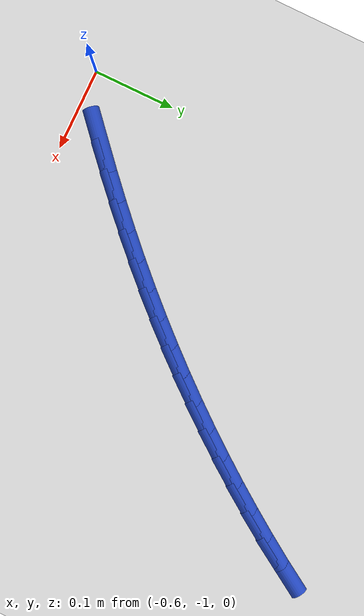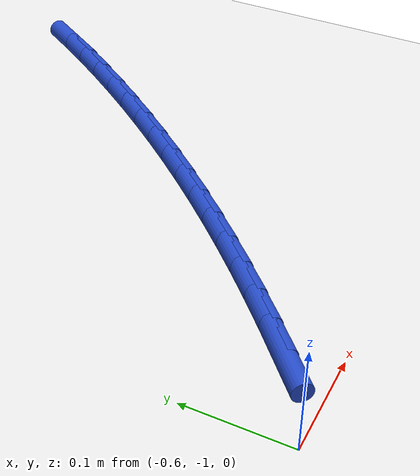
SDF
<sdf version="1.6">
 <world name="default">
  <model name="ground_plane">
   <static>1</static>
   <link name="link">
    <collision name="collision">
     <geometry><plane><normal>0 0 1</normal><size>100 100</size></plane></geometry>
     <surface><friction><ode><mu>100</mu><mu2>50</mu2></ode></friction></surface>
    </collision>
    <visual name="visual">
     <cast_shadows>0</cast_shadows>
     <geometry><plane><normal>0 0 1</normal><size>100 100</size></plane></geometry>
     <material>
      <script><uri>file://media/materials/scripts/gazebo.material</uri><name>Gazebo/WhiteGlow</name></script>
     </material>
    </visual>
   </link>
  </model>
  <model name="line">
   <link name="link_159">
    <pose>-0.5254845396667099 -0.9583825570954954 0.01 0 1.57 0.7232389618638402</pose>
    <collision name="collision">
     <geometry><cylinder><radius>0.01</radius><length>0.08</length></cylinder></geometry>
    </collision>
    <visual name="visual">
     <material>
      <script><name>Gazebo/Blue</name><uri>file://media/materials/scripts/gazebo.material</uri></script>
     </material>
     <geometry><cylinder><radius>0.01</radius><length>0.08</length></cylinder></geometry>
    </visual>
   </link>
   <link name="link_160">
    <pose>-0.497399118365771 -0.9335883322720004 0.01 0 1.57 0.7396982553316253</pose>
    <collision name="collision">
     <geometry><cylinder><radius>0.01</radius><length>0.08</length></cylinder></geometry>
    </collision>
    <visual name="visual">
     <material>
      <script><name>Gazebo/Blue</name><uri>file://media/materials/scripts/gazebo.material</uri></script>
     </material>
     <geometry><cylinder><radius>0.01</radius><length>0.08</length></cylinder></geometry>
    </visual>
   </link>
   <link name="link_161">
    <pose>-0.4700122883256304 -0.9085968538927782 0.01 0 1.57 0.7567444791922098</pose>
    <collision name="collision">
     <geometry><cylinder><radius>0.01</radius><length>0.08</length></cylinder></geometry>
    </collision>
    <visual name="visual">
     <material>
      <script><name>Gazebo/Blue</name><uri>file://media/materials/scripts/gazebo.material</uri></script>
     </material>
     <geometry><cylinder><radius>0.01</radius><length>0.08</length></cylinder></geometry>
    </visual>
   </link>
   <link name="link_162">
    <pose>-0.4433038601231262 -0.883376776054476 0.01 0 1.57 0.7743334113416678</pose>
    <collision name="collision">
     <geometry><cylinder><radius>0.01</radius><length>0.08</length></cylinder></geometry>
    </collision>
    <visual name="visual">
     <material>
      <script><name>Gazebo/Blue</name><uri>file://media/materials/scripts/gazebo.material</uri></script>
     </material>
     <geometry><cylinder><radius>0.01</radius><length>0.08</length></cylinder></geometry>
    </visual>
   </link>
   <link name="link_163">
    <pose>-0.4172536443350967 -0.8578967528537418 0.01 0 1.57 0.7924144035123281</pose>
    <collision name="collision">
     <geometry><cylinder><radius>0.01</radius><length>0.08</length></cylinder></geometry>
    </collision>
    <visual name="visual">
     <material>
      <script><name>Gazebo/Blue</name><uri>file://media/materials/scripts/gazebo.material</uri></script>
     </material>
     <geometry><cylinder><radius>0.01</radius><length>0.08</length></cylinder></geometry>
    </visual>
   </link>
   <link name="link_164">
    <pose>-0.3918414515383799 -0.8321254383872227 0.01 0 1.57 0.8109307457487197</pose>
    <collision name="collision">
     <geometry><cylinder><radius>0.01</radius><length>0.08</length></cylinder></geometry>
    </collision>
    <visual name="visual">
     <material>
      <script><name>Gazebo/Blue</name><uri>file://media/materials/scripts/gazebo.material</uri></script>
     </material>
     <geometry><cylinder><radius>0.01</radius><length>0.08</length></cylinder></geometry>
    </visual>
   </link>
   <link name="link_165">
    <pose>-0.36704709230981375 -0.806031486751566 0.01 0 1.57 0.8298202030115436</pose>
    <collision name="collision">
     <geometry><cylinder><radius>0.01</radius><length>0.08</length></cylinder></geometry>
    </collision>
    <visual name="visual">
     <material>
      <script><name>Gazebo/Blue</name><uri>file://media/materials/scripts/gazebo.material</uri></script>
     </material>
     <geometry><cylinder><radius>0.01</radius><length>0.08</length></cylinder></geometry>
    </visual>
   </link>
   <link name="link_166">
    <pose>-0.34285037722623707 -0.77958355204342 0.01 0 1.57 0.8490157190095005</pose>
    <collision name="collision">
     <geometry><cylinder><radius>0.01</radius><length>0.08</length></cylinder></geometry>
    </collision>
    <visual name="visual">
     <material>
      <script><name>Gazebo/Blue</name><uri>file://media/materials/scripts/gazebo.material</uri></script>
     </material>
     <geometry><cylinder><radius>0.01</radius><length>0.08</length></cylinder></geometry>
    </visual>
   </link>
   <link name="link_167">
    <pose>-0.31923111686448685 -0.7527502883594308 0.01 0 1.57 0.8684462735151195</pose>
    <collision name="collision">
     <geometry><cylinder><radius>0.01</radius><length>0.08</length></cylinder></geometry>
    </collision>
    <visual name="visual">
     <material>
      <script><name>Gazebo/Blue</name><uri>file://media/materials/scripts/gazebo.material</uri></script>
     </material>
     <geometry><cylinder><radius>0.01</radius><length>0.08</length></cylinder></geometry>
    </visual>
   </link>
   <link name="link_168">
    <pose>-0.2961691218014018 -0.7255003497962467 0.01 0 1.57 0.8880378706557185</pose>
    <collision name="collision">
     <geometry><cylinder><radius>0.01</radius><length>0.08</length></cylinder></geometry>
    </collision>
    <visual name="visual">
     <material>
      <script><name>Gazebo/Blue</name><uri>file://media/materials/scripts/gazebo.material</uri></script>
     </material>
     <geometry><cylinder><radius>0.01</radius><length>0.08</length></cylinder></geometry>
    </visual>
   </link>
   <link name="link_169">
    <pose>-0.27364420261381994 -0.6978023904505147 0.01 0 1.57 0.9077146277482081</pose>
    <collision name="collision">
     <geometry><cylinder><radius>0.01</radius><length>0.08</length></cylinder></geometry>
    </collision>
    <visual name="visual">
     <material>
      <script><name>Gazebo/Blue</name><uri>file://media/materials/scripts/gazebo.material</uri></script>
     </material>
     <geometry><cylinder><radius>0.01</radius><length>0.08</length></cylinder></geometry>
    </visual>
   </link>
   <link name="link_170">
    <pose>-0.25163616987857934 -0.6696250644188826 0.01 0 1.57 0.9273999279143829</pose>
    <collision name="collision">
     <geometry><cylinder><radius>0.01</radius><length>0.08</length></cylinder></geometry>
    </collision>
    <visual name="visual">
     <material>
      <script><name>Gazebo/Blue</name><uri>file://media/materials/scripts/gazebo.material</uri></script>
     </material>
     <geometry><cylinder><radius>0.01</radius><length>0.08</length></cylinder></geometry>
    </visual>
   </link>
   <link name="link_171">
    <pose>-0.23012483417251817 -0.6409370257979974 0.01 0 1.57 0.9470178312782478</pose>
    <collision name="collision">
     <geometry><cylinder><radius>0.01</radius><length>0.08</length></cylinder></geometry>
    </collision>
    <visual name="visual">
     <material>
      <script><name>Gazebo/Blue</name><uri>file://media/materials/scripts/gazebo.material</uri></script>
     </material>
     <geometry><cylinder><radius>0.01</radius><length>0.08</length></cylinder></geometry>
    </visual>
   </link>
   <link name="link_172">
    <pose>-0.20909001897873178 -0.6117069320888545 0.01 0 1.57 0.966992269546299</pose>
    <collision name="collision">
     <geometry><cylinder><radius>0.01</radius><length>0.08</length></cylinder></geometry>
    </collision>
    <visual name="visual">
     <material>
      <script><name>Gazebo/Blue</name><uri>file://media/materials/scripts/gazebo.material</uri></script>
     </material>
     <geometry><cylinder><radius>0.01</radius><length>0.08</length></cylinder></geometry>
    </visual>
   </link>
   <link name="link_173">
    <pose>-0.18853835798868865 -0.581910512652825 0.01 0 1.57 0.9888542266670356</pose>
    <collision name="collision">
     <geometry><cylinder><radius>0.01</radius><length>0.08</length></cylinder></geometry>
    </collision>
    <visual name="visual">
     <material>
      <script><name>Gazebo/Blue</name><uri>file://media/materials/scripts/gazebo.material</uri></script>
     </material>
     <geometry><cylinder><radius>0.01</radius><length>0.08</length></cylinder></geometry>
    </visual>
   </link>
   <link name="link_174">
    <pose>-0.16855973872729463 -0.5515454571239445 0.01 0 1.57 1.012959153528435</pose>
    <collision name="collision">
     <geometry><cylinder><radius>0.01</radius><length>0.08</length></cylinder></geometry>
    </collision>
    <visual name="visual">
     <material>
      <script><name>Gazebo/Blue</name><uri>file://media/materials/scripts/gazebo.material</uri></script>
     </material>
     <geometry><cylinder><radius>0.01</radius><length>0.08</length></cylinder></geometry>
    </visual>
   </link>
  </model>
 </world>
</sdf>
